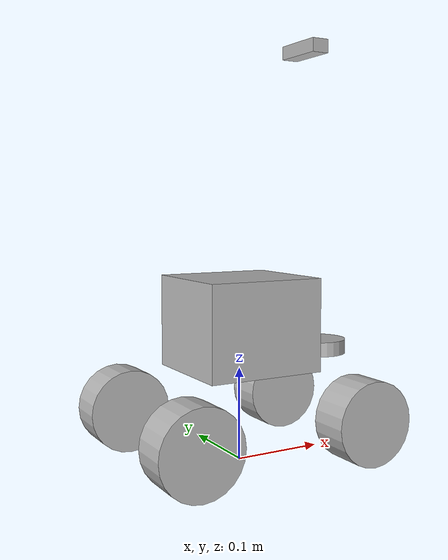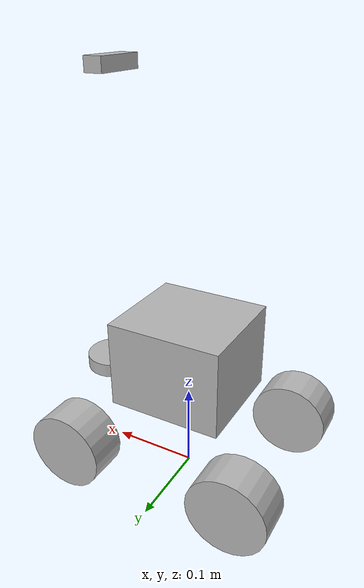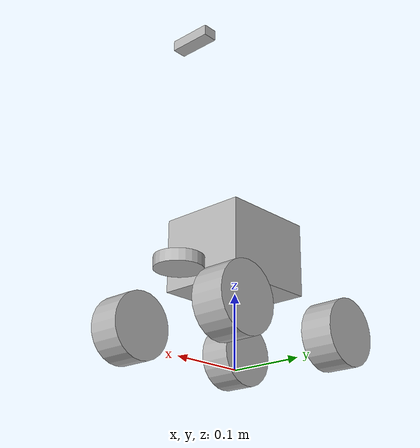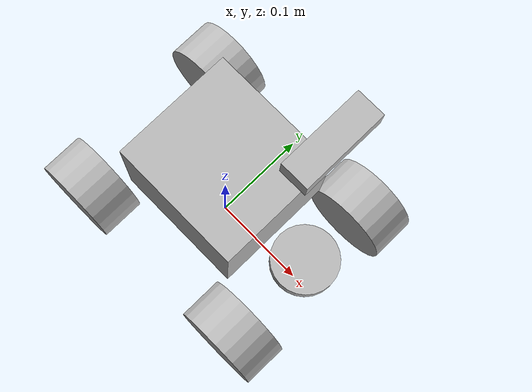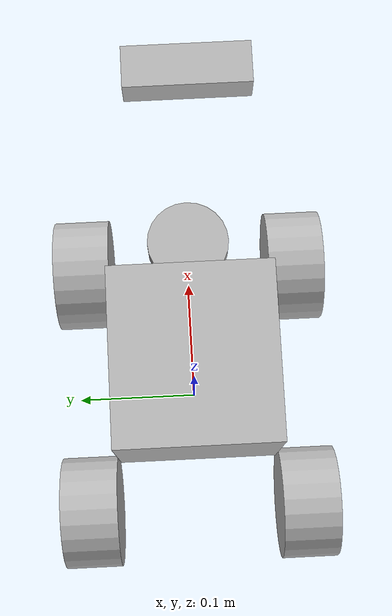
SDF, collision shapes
<?xml version='1.0'?>
<sdf version='1.7'>
  <model name='limo_four_diff'>
    <link name='base_footprint'>
      <inertial>
        <pose>0.007905 0 0.160821 0 -0 0</pose>
        <mass>2.3657</mass>
        <inertia>
          <ixx>0.248941</ixx>
          <ixy>0</ixy>
          <ixz>-0.00196744</ixz>
          <iyy>0.970559</iyy>
          <iyz>0</iyz>
          <izz>0.961621</izz>
        </inertia>
      </inertial>
      <collision name='base_footprint_fixed_joint_lump__base_link_collision'>
        <pose>0 0 0.15 0 -0 0</pose>
        <geometry>
          <box>
            <size>0.13 0.12 0.1</size>
          </box>
        </geometry>
      </collision>
      <collision name='base_footprint_fixed_joint_lump__depth_camera_collision_collision_1'>
        <pose>0.084 0 0.45 0 -0 0</pose>
        <geometry>
          <box>
            <size>0.02 0.06 0.015</size>
          </box>
        </geometry>
      </collision>
      <collision name='base_footprint_fixed_joint_lump__imu_collision_collision_2'>
        <pose>0 0 0.05 0 -0 0</pose>
        <geometry>
          <box>
            <size>0.001 0.001 0.001</size>
          </box>
        </geometry>
      </collision>
      <collision name='base_footprint_fixed_joint_lump__laser_collision_collision_3'>
        <pose>0.103 0 0.116 0 -0 0</pose>
        <geometry>
          <cylinder>
            <length>0.016</length>
            <radius>0.032</radius>
          </cylinder>
        </geometry>
      </collision>
      <visual name='base_footprint_fixed_joint_lump__base_link_visual'>
        <pose>0 0 0 0 -0 1.57</pose>
        <geometry>
          <mesh>
            <scale>1 1 1</scale>
            <uri>file:///root/agx_workspace/install/limo_description/share/limo_description/meshes/limo_base.dae</uri>
          </mesh>
        </geometry>
      </visual>
      <visual name='base_footprint_fixed_joint_lump__depth_camera_visual_visual_1'>
        <pose>0.084 0 0.45 0 -0 0</pose>
        <geometry>
          <box>
            <size>0.02 0.06 0.015</size>
          </box>
        </geometry>
      </visual>
      <visual name='base_footprint_fixed_joint_lump__imu_visual_visual_2'>
        <pose>0 0 0.05 0 -0 0</pose>
        <geometry>
          <box>
            <size>0.001 0.001 0.001</size>
          </box>
        </geometry>
      </visual>
      <visual name='base_footprint_fixed_joint_lump__laser_visual_visual_3'>
        <pose>0.103 0 0.116 0 -0 0</pose>
        <geometry>
          <cylinder>
            <length>0.01</length>
            <radius>0.02</radius>
          </cylinder>
        </geometry>
      </visual>
      <sensor name='sensor_camera' type='depth'>
        <always_on>0</always_on>
        <update_rate>1</update_rate>
        <camera name='limo_camera'>
          <distortion>
            <k1>0.1</k1>
            <k2>0.2</k2>
            <k3>0.3</k3>
            <p1>0.4</p1>
            <p2>0.5</p2>
            <center>0.5 0.5</center>
          </distortion>
          <horizontal_fov>1.047</horizontal_fov>
          <image>
            <width>320</width>
            <height>240</height>
          </image>
          <clip>
            <near>0.1</near>
            <far>100</far>
          </clip>
        </camera>
        <plugin name='gazebo_ros_depth_camera_sensor' filename='libgazebo_ros_camera.so'>
          <ros>
            <namespace>/limo</namespace>
            <argument>limo_camera/image_raw:=limo_camera/image</argument>
            <argument>limo_camera/image_depth:=limo_camera/depth/camera_image_depth</argument>
            <argument>limo_camera/camera_info:=limo_camera/camera_info_raw</argument>
            <argument>limo_camera/camera_info_depth:=limo_camera/camera_info_depth</argument>
            <argument>limo_camera/points:=limo_camera/camera_points</argument>
          </ros>
          <camera_name>depth_camera_link</camera_name>
          <frame_name>depth_camera_link</frame_name>
          <hack_baseline>0.07</hack_baseline>
          <min_depth>0.001</min_depth>
        </plugin>
        <pose>0.084 0 0.45 0 -0 0</pose>
      </sensor>
      <gravity>1</gravity>
      <sensor name='twr_imu' type='imu'>
        <always_on>1</always_on>
        <update_rate>100</update_rate>
        <visualize>1</visualize>
        <imu>
          <angular_velocity>
            <x>
              <noise type='gaussian'>
                <mean>0</mean>
                <stddev>0.0002</stddev>
              </noise>
            </x>
            <y>
              <noise type='gaussian'>
                <mean>0</mean>
                <stddev>0.0002</stddev>
              </noise>
            </y>
            <z>
              <noise type='gaussian'>
                <mean>0</mean>
                <stddev>0.0002</stddev>
              </noise>
            </z>
          </angular_velocity>
          <linear_acceleration>
            <x>
              <noise type='gaussian'>
                <mean>0</mean>
                <stddev>0.017</stddev>
              </noise>
            </x>
            <y>
              <noise type='gaussian'>
                <mean>0</mean>
                <stddev>0.017</stddev>
              </noise>
            </y>
            <z>
              <noise type='gaussian'>
                <mean>0</mean>
                <stddev>0.017</stddev>
              </noise>
            </z>
          </linear_acceleration>
          <orientation>
            <x>
              <noise type='gaussian'>
                <mean>0.0</mean>
                <stddev>2e-3</stddev>
              </noise>
            </x>
            <y>
              <noise type='gaussian'>
                <mean>0.0</mean>
                <stddev>2e-3</stddev>
              </noise>
            </y>
            <z>
              <noise type='gaussian'>
                <mean>0.0</mean>
                <stddev>2e-3</stddev>
              </noise>
            </z>
          </orientation>
        </imu>
        <plugin name='two_wheeled_robot_imu' filename='libgazebo_ros_imu_sensor.so'>
          <initial_orientation_as_reference>0</initial_orientation_as_reference>
          <frame_name>imu_link</frame_name>
          <ros>
            <namespace>/imu</namespace>
            <remapping>~/out:=data</remapping>
          </ros>
        </plugin>
        <pose>0 0 0.05 0 -0 0</pose>
      </sensor>
      <sensor name='laser' type='ray'>
        <always_on>1</always_on>
        <visualize>1</visualize>
        <update_rate>10</update_rate>
        <ray>
          <scan>
            <horizontal>
              <samples>120</samples>
              <resolution>1</resolution>
              <min_angle>-3.14159</min_angle>
              <max_angle>3.14159</max_angle>
            </horizontal>
          </scan>
          <range>
            <min>0.3</min>
            <max>15</max>
            <resolution>0.015</resolution>
          </range>
          <noise>
            <type>gaussian</type>
            <mean>0</mean>
            <stddev>0.01</stddev>
          </noise>
        </ray>
        <plugin name='scan' filename='libgazebo_ros_ray_sensor.so'>
          <ros>
            <remapping>~/out:=scan</remapping>
          </ros>
          <output_type>sensor_msgs/LaserScan</output_type>
          <frame_name>laser_link</frame_name>
        </plugin>
        <pose>0.103 0 0.116 0 -0 0</pose>
      </sensor>
    </link>
    <joint name='front_left_wheel' type='revolute'>
      <pose relative_to='base_footprint'>0.1 0.065 0.05 0 -0 0</pose>
      <parent>base_footprint</parent>
      <child>front_left_wheel_link</child>
      <axis>
        <xyz>0 1 0</xyz>
        <limit>
          <lower>-1e+16</lower>
          <upper>1e+16</upper>
        </limit>
        <dynamics>
          <spring_reference>0</spring_reference>
          <spring_stiffness>0</spring_stiffness>
        </dynamics>
      </axis>
      <physics>
        <ode>
          <limit>
            <cfm>0</cfm>
            <erp>0.2</erp>
          </limit>
        </ode>
      </physics>
    </joint>
    <link name='front_left_wheel_link'>
      <pose relative_to='front_left_wheel'>0 0 0 0 -0 0</pose>
      <inertial>
        <pose>0 0 0 0 -0 0</pose>
        <mass>0.5</mass>
        <inertia>
          <ixx>0.01055</ixx>
          <ixy>0</ixy>
          <ixz>0</ixz>
          <iyy>0.00075</iyy>
          <iyz>0</iyz>
          <izz>0.01055</izz>
        </inertia>
      </inertial>
      <collision name='front_left_wheel_link_collision'>
        <pose>0 0.0225 0 1.57 -0 0</pose>
        <geometry>
          <cylinder>
            <length>0.045</length>
            <radius>0.045</radius>
          </cylinder>
        </geometry>
      </collision>
      <visual name='front_left_wheel_link_visual'>
        <pose>0 0 0 0 -0 0</pose>
        <geometry>
          <mesh>
            <scale>1 1 1</scale>
            <uri>file:///root/agx_workspace/install/limo_description/share/limo_description/meshes/limo_wheel.dae</uri>
          </mesh>
        </geometry>
      </visual>
    </link>
    <joint name='front_right_wheel' type='revolute'>
      <pose relative_to='base_footprint'>0.1 -0.065 0.05 3.14159 -0 0</pose>
      <parent>base_footprint</parent>
      <child>front_right_wheel_link</child>
      <axis>
        <xyz>0 -1 0</xyz>
        <limit>
          <lower>-1e+16</lower>
          <upper>1e+16</upper>
        </limit>
        <dynamics>
          <spring_reference>0</spring_reference>
          <spring_stiffness>0</spring_stiffness>
        </dynamics>
      </axis>
      <physics>
        <ode>
          <limit>
            <cfm>0</cfm>
            <erp>0.2</erp>
          </limit>
        </ode>
      </physics>
    </joint>
    <link name='front_right_wheel_link'>
      <pose relative_to='front_right_wheel'>0 0 0 0 -0 0</pose>
      <inertial>
        <pose>0 0 0 0 -0 0</pose>
        <mass>0.5</mass>
        <inertia>
          <ixx>0.01055</ixx>
          <ixy>0</ixy>
          <ixz>0</ixz>
          <iyy>0.00075</iyy>
          <iyz>0</iyz>
          <izz>0.01055</izz>
        </inertia>
      </inertial>
      <collision name='front_right_wheel_link_collision'>
        <pose>0 0.0225 0 1.57 -0 0</pose>
        <geometry>
          <cylinder>
            <length>0.045</length>
            <radius>0.045</radius>
          </cylinder>
        </geometry>
      </collision>
      <visual name='front_right_wheel_link_visual'>
        <pose>0 0 0 0 -0 0</pose>
        <geometry>
          <mesh>
            <scale>1 1 1</scale>
            <uri>file:///root/agx_workspace/install/limo_description/share/limo_description/meshes/limo_wheel.dae</uri>
          </mesh>
        </geometry>
      </visual>
    </link>
    <joint name='rear_left_wheel' type='revolute'>
      <pose relative_to='base_footprint'>-0.1 0.065 0.05 0 -0 0</pose>
      <parent>base_footprint</parent>
      <child>rear_left_wheel_link</child>
      <axis>
        <xyz>0 1 0</xyz>
        <limit>
          <lower>-1e+16</lower>
          <upper>1e+16</upper>
        </limit>
        <dynamics>
          <spring_reference>0</spring_reference>
          <spring_stiffness>0</spring_stiffness>
        </dynamics>
      </axis>
      <physics>
        <ode>
          <limit>
            <cfm>0</cfm>
            <erp>0.2</erp>
          </limit>
        </ode>
      </physics>
    </joint>
    <link name='rear_left_wheel_link'>
      <pose relative_to='rear_left_wheel'>0 0 0 0 -0 0</pose>
      <inertial>
        <pose>0 0 0 0 -0 0</pose>
        <mass>0.5</mass>
        <inertia>
          <ixx>0.01055</ixx>
          <ixy>0</ixy>
          <ixz>0</ixz>
          <iyy>0.00075</iyy>
          <iyz>0</iyz>
          <izz>0.01055</izz>
        </inertia>
      </inertial>
      <collision name='rear_left_wheel_link_collision'>
        <pose>0 0.0225 0 1.57 -0 0</pose>
        <geometry>
          <cylinder>
            <length>0.045</length>
            <radius>0.045</radius>
          </cylinder>
        </geometry>
      </collision>
      <visual name='rear_left_wheel_link_visual'>
        <pose>0 0 0 0 -0 0</pose>
        <geometry>
          <mesh>
            <scale>1 1 1</scale>
            <uri>file:///root/agx_workspace/install/limo_description/share/limo_description/meshes/limo_wheel.dae</uri>
          </mesh>
        </geometry>
      </visual>
    </link>
    <joint name='rear_right_wheel' type='revolute'>
      <pose relative_to='base_footprint'>-0.1 -0.065 0.05 3.14159 -0 0</pose>
      <parent>base_footprint</parent>
      <child>rear_right_wheel_link</child>
      <axis>
        <xyz>0 -1 0</xyz>
        <limit>
          <lower>-1e+16</lower>
          <upper>1e+16</upper>
        </limit>
        <dynamics>
          <spring_reference>0</spring_reference>
          <spring_stiffness>0</spring_stiffness>
        </dynamics>
      </axis>
      <physics>
        <ode>
          <limit>
            <cfm>0</cfm>
            <erp>0.2</erp>
          </limit>
        </ode>
      </physics>
    </joint>
    <link name='rear_right_wheel_link'>
      <pose relative_to='rear_right_wheel'>0 0 0 0 -0 0</pose>
      <inertial>
        <pose>0 0 0 0 -0 0</pose>
        <mass>0.5</mass>
        <inertia>
          <ixx>0.01055</ixx>
          <ixy>0</ixy>
          <ixz>0</ixz>
          <iyy>0.00075</iyy>
          <iyz>0</iyz>
          <izz>0.01055</izz>
        </inertia>
      </inertial>
      <collision name='rear_right_wheel_link_collision'>
        <pose>0 0.0225 0 1.57 -0 0</pose>
        <geometry>
          <cylinder>
            <length>0.045</length>
            <radius>0.045</radius>
          </cylinder>
        </geometry>
      </collision>
      <visual name='rear_right_wheel_link_visual'>
        <pose>0 0 0 0 -0 0</pose>
        <geometry>
          <mesh>
            <scale>1 1 1</scale>
            <uri>file:///root/agx_workspace/install/limo_description/share/limo_description/meshes/limo_wheel.dae</uri>
          </mesh>
        </geometry>
      </visual>
    </link>
    <static>0</static>
    <plugin name='four_diff_controller' filename='libgazebo_ros_diff_drive.so'>
      <update_rate>50</update_rate>
      <num_wheel_pairs>2</num_wheel_pairs>
      <left_joint>front_left_wheel</left_joint>
      <right_joint>front_right_wheel</right_joint>
      <left_joint>rear_left_wheel</left_joint>
      <right_joint>rear_right_wheel</right_joint>
      <wheel_separation>0.172</wheel_separation>
      <wheel_diameter>0.09</wheel_diameter>
      <max_wheel_torque>20</max_wheel_torque>
      <max_wheel_acceleration>1.0</max_wheel_acceleration>
      <command_topic>cmd_vel</command_topic>
      <publish_odom>1</publish_odom>
      <publish_odom_tf>1</publish_odom_tf>
      <publish_wheel_tf>1</publish_wheel_tf>
      <odometry_topic>odom</odometry_topic>
      <odometry_frame>odom</odometry_frame>
      <robot_base_frame>base_footprint</robot_base_frame>
      <odometry_source>1</odometry_source>
      <ros>
        <remapping>odom:=/odometry</remapping>
      </ros>
    </plugin>
  </model>
</sdf>
